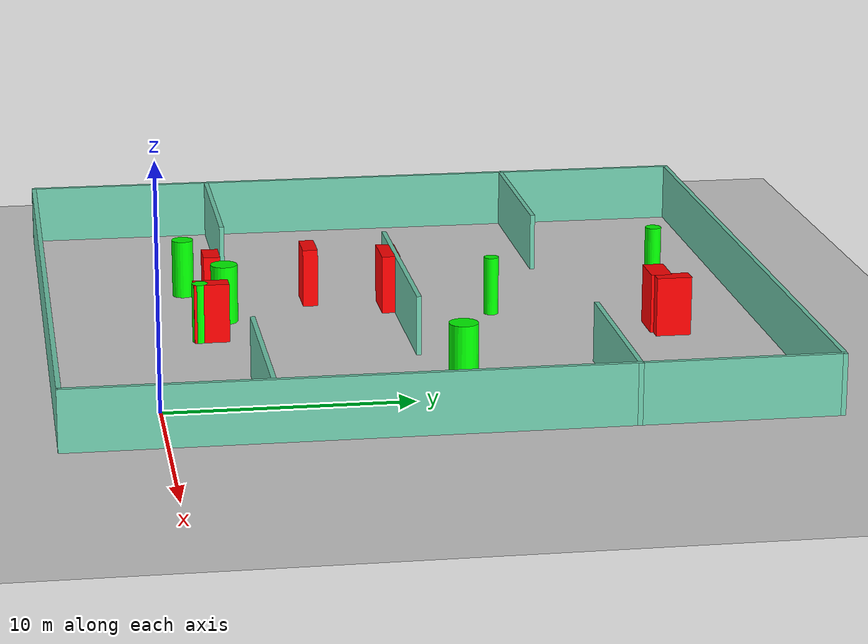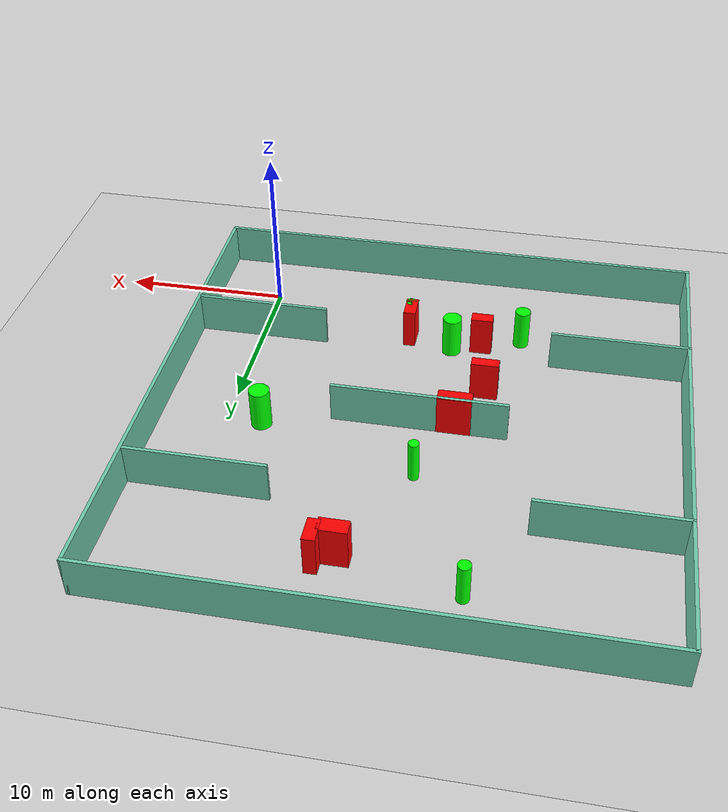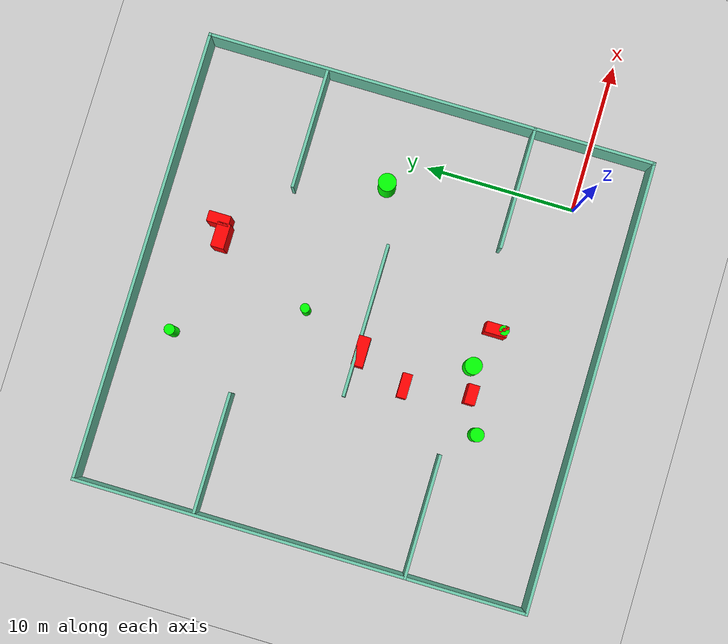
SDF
<sdf version="1.7">
 <world name="default">
  <light name="sun" type="directional">
   <pose>0 0 10 0 -0 0</pose>
   <diffuse>0.8 0.8 0.8 1</diffuse>
   <specular>0.2 0.2 0.2 1</specular>
   <attenuation>
    <range>1000</range>
    <constant>0.9</constant>
    <linear>0.01</linear>
    <quadratic>0.001</quadratic>
   </attenuation>
   <direction>-0.5 0.1 -0.9</direction>
   <spot><inner_angle>0</inner_angle><outer_angle>0</outer_angle><falloff>0</falloff></spot>
  </light>
  <model name="ground_plane">
   <static>1</static>
   <link name="link">
    <collision name="collision">
     <geometry><plane><normal>0 0 1</normal><size>100 100</size></plane></geometry>
     <surface>
      <contact><collide_bitmask>65535</collide_bitmask></contact>
      <friction><ode><mu>100</mu><mu2>50</mu2></ode></friction>
     </surface>
    </collision>
    <visual name="visual">
     <cast_shadows>0</cast_shadows>
     <geometry><plane><normal>0 0 1</normal><size>100 100</size></plane></geometry>
     <material>
      <script><uri>file://media/materials/scripts/gazebo.material</uri><name>Gazebo/Grey</name></script>
     </material>
    </visual>
   </link>
  </model>
  <gravity>0 0 -9.8</gravity>
  <magnetic_field>6e-06 2.3e-05 -4.2e-05</magnetic_field>
  <atmosphere type="adiabatic"/>
  <physics type="ode">
   <max_step_size>0.001</max_step_size>
   <real_time_factor>1</real_time_factor>
   <real_time_update_rate>1000</real_time_update_rate>
  </physics>
  <scene><ambient>0.4 0.4 0.4 1</ambient><background>0.7 0.7 0.7 1</background><shadows>1</shadows></scene>
  <spherical_coordinates>
   <surface_model>EARTH_WGS84</surface_model>
   <latitude_deg>0</latitude_deg>
   <longitude_deg>0</longitude_deg>
   <elevation>0</elevation>
   <heading_deg>0</heading_deg>
  </spherical_coordinates>
  <model name="my_base_walls">
   <link name="Wall_10">
    <collision name="Wall_10_Collision">
     <geometry><box><size>8.2 0.2 2.5</size></box></geometry>
     <pose>0 0 1.25 0 -0 0</pose>
    </collision>
    <visual name="Wall_10_Visual">
     <pose>0 0 1.25 0 -0 0</pose>
     <geometry><box><size>8.2 0.2 2.5</size></box></geometry>
     <material>
      <script><uri>file://media/materials/scripts/gazebo.material</uri><name>Gazebo/Grey</name></script>
      <ambient>0.435294 0.796078 0.67451 1</ambient>
     </material>
     <meta><layer>0</layer></meta>
    </visual>
    <pose>-11 -7 0 0 -0 0</pose>
   </link>
   <link name="Wall_12">
    <collision name="Wall_12_Collision">
     <geometry><box><size>8.2 0.2 2.5</size></box></geometry>
     <pose>0 0 1.25 0 -0 0</pose>
    </collision>
    <visual name="Wall_12_Visual">
     <pose>0 0 1.25 0 -0 0</pose>
     <geometry><box><size>8.2 0.2 2.5</size></box></geometry>
     <material>
      <script><uri>file://media/materials/scripts/gazebo.material</uri><name>Gazebo/Grey</name></script>
      <ambient>0.435294 0.796078 0.67451 1</ambient>
     </material>
     <meta><layer>0</layer></meta>
    </visual>
    <pose>-11 7 0 0 -0 0</pose>
   </link>
   <link name="Wall_14">
    <collision name="Wall_14_Collision">
     <geometry><box><size>8.2 0.2 2.5</size></box></geometry>
     <pose>0 0 1.25 0 -0 0</pose>
    </collision>
    <visual name="Wall_14_Visual">
     <pose>0 0 1.25 0 -0 0</pose>
     <geometry><box><size>8.2 0.2 2.5</size></box></geometry>
     <material>
      <script><uri>file://media/materials/scripts/gazebo.material</uri><name>Gazebo/Grey</name></script>
      <ambient>0.435294 0.796078 0.67451 1</ambient>
     </material>
     <meta><layer>0</layer></meta>
    </visual>
    <pose>11 7 0 0 -0 3.14159</pose>
   </link>
   <link name="Wall_16">
    <collision name="Wall_16_Collision">
     <geometry><box><size>10.2 0.2 2.5</size></box></geometry>
     <pose>0 0 1.25 0 -0 0</pose>
    </collision>
    <visual name="Wall_16_Visual">
     <pose>0 0 1.25 0 -0 0</pose>
     <geometry><box><size>10.2 0.2 2.5</size></box></geometry>
     <material>
      <script><uri>file://media/materials/scripts/gazebo.material</uri><name>Gazebo/Grey</name></script>
      <ambient>0.435294 0.796078 0.67451 1</ambient>
     </material>
     <meta><layer>0</layer></meta>
    </visual>
    <pose>0 0 0 0 -0 3.14159</pose>
   </link>
   <link name="Wall_2">
    <collision name="Wall_2_Collision">
     <geometry><box><size>30.2 0.2 2.5</size></box></geometry>
     <pose>0 0 1.25 0 -0 0</pose>
    </collision>
    <visual name="Wall_2_Visual">
     <pose>0 0 1.25 0 -0 0</pose>
     <geometry><box><size>30.2 0.2 2.5</size></box></geometry>
     <material>
      <script><uri>file://media/materials/scripts/gazebo.material</uri><name>Gazebo/Grey</name></script>
      <ambient>0.435294 0.796078 0.67451 1</ambient>
     </material>
     <meta><layer>0</layer></meta>
    </visual>
    <pose>0 -15 0 0 -0 3.14159</pose>
   </link>
   <link name="Wall_3">
    <collision name="Wall_3_Collision">
     <geometry><box><size>30.2 0.2 2.5</size></box></geometry>
     <pose>0 0 1.25 0 -0 0</pose>
    </collision>
    <visual name="Wall_3_Visual">
     <pose>0 0 1.25 0 -0 0</pose>
     <geometry><box><size>30.2 0.2 2.5</size></box></geometry>
     <material>
      <script><uri>file://media/materials/scripts/gazebo.material</uri><name>Gazebo/Grey</name></script>
      <ambient>0.435294 0.796078 0.67451 1</ambient>
     </material>
     <meta><layer>0</layer></meta>
    </visual>
    <pose>-15 0 0 0 -0 1.5708</pose>
   </link>
   <link name="Wall_4">
    <collision name="Wall_4_Collision">
     <geometry><box><size>30.2 0.2 2.5</size></box></geometry>
     <pose>0 0 1.25 0 -0 0</pose>
    </collision>
    <visual name="Wall_4_Visual">
     <pose>0 0 1.25 0 -0 0</pose>
     <geometry><box><size>30.2 0.2 2.5</size></box></geometry>
     <material>
      <script><uri>file://media/materials/scripts/gazebo.material</uri><name>Gazebo/Grey</name></script>
      <ambient>0.435294 0.796078 0.67451 1</ambient>
     </material>
     <meta><layer>0</layer></meta>
    </visual>
    <pose>0 15 0 0 -0 0</pose>
   </link>
   <link name="Wall_6">
    <collision name="Wall_6_Collision">
     <geometry><box><size>30.2 0.2 2.5</size></box></geometry>
     <pose>0 0 1.25 0 -0 0</pose>
    </collision>
    <visual name="Wall_6_Visual">
     <pose>0 0 1.25 0 -0 0</pose>
     <geometry><box><size>30.2 0.2 2.5</size></box></geometry>
     <material>
      <script><uri>file://media/materials/scripts/gazebo.material</uri><name>Gazebo/Grey</name></script>
      <ambient>0.435294 0.796078 0.67451 1</ambient>
     </material>
     <meta><layer>0</layer></meta>
    </visual>
    <pose>15 0 0 0 -0 1.5708</pose>
   </link>
   <link name="Wall_8">
    <collision name="Wall_8_Collision">
     <geometry><box><size>8.2 0.2 2.5</size></box></geometry>
     <pose>0 0 1.25 0 -0 0</pose>
    </collision>
    <visual name="Wall_8_Visual">
     <pose>0 0 1.25 0 -0 0</pose>
     <geometry><box><size>8.2 0.2 2.5</size></box></geometry>
     <material>
      <script><uri>file://media/materials/scripts/gazebo.material</uri><name>Gazebo/Grey</name></script>
      <ambient>0.435294 0.796078 0.67451 1</ambient>
     </material>
     <meta><layer>0</layer></meta>
    </visual>
    <pose>11 -7 0 0 -0 3.14159</pose>
   </link>
   <static>1</static>
   <pose>-11 11 0 0 -0 0</pose>
  </model>
  <model name="cylinder1">
   <static>1</static>
   <link name="link">
    <inertial>
     <mass>1</mass>
     <inertia><ixx>0.5</ixx><ixy>0</ixy><ixz>0</ixz><iyy>0.5</iyy><iyz>0</iyz><izz>1</izz></inertia>
    </inertial>
    <collision name="collision">
     <geometry><cylinder><radius>0.5989491937738323</radius><length>2.5</length></cylinder></geometry>
    </collision>
    <visual name="visual">
     <geometry><cylinder><radius>0.5989491937738323</radius><length>2.5</length></cylinder></geometry>
     <material>
      <ambient>0 1 0 1</ambient>
      <diffuse>0 1 0 1</diffuse>
      <specular>0.1 0.1 0.1 1</specular>
      <emissive>0 0 0 0</emissive>
     </material>
    </visual>
   </link>
   <pose>-2.0635536661782403 12.200839927648927 1.25 0 0 0</pose>
  </model>
  <model name="cylinder2">
   <static>1</static>
   <link name="link">
    <inertial>
     <mass>1</mass>
     <inertia><ixx>0.5</ixx><ixy>0</ixy><ixz>0</ixz><iyy>0.5</iyy><iyz>0</iyz><izz>1</izz></inertia>
    </inertial>
    <collision name="collision">
     <geometry><cylinder><radius>0.33364034862856157</radius><length>2.5</length></cylinder></geometry>
    </collision>
    <visual name="visual">
     <geometry><cylinder><radius>0.33364034862856157</radius><length>2.5</length></cylinder></geometry>
     <material>
      <ambient>0 1 0 1</ambient>
      <diffuse>0 1 0 1</diffuse>
      <specular>0.1 0.1 0.1 1</specular>
      <emissive>0 0 0 0</emissive>
     </material>
    </visual>
   </link>
   <pose>-9.132691556437852 2.306453134440183 1.25 0 0 0</pose>
  </model>
  <model name="cylinder3">
   <static>1</static>
   <link name="link">
    <inertial>
     <mass>1</mass>
     <inertia><ixx>0.5</ixx><ixy>0</ixy><ixz>0</ixz><iyy>0.5</iyy><iyz>0</iyz><izz>1</izz></inertia>
    </inertial>
    <collision name="collision">
     <geometry><cylinder><radius>0.46288112792322467</radius><length>2.5</length></cylinder></geometry>
    </collision>
    <visual name="visual">
     <geometry><cylinder><radius>0.46288112792322467</radius><length>2.5</length></cylinder></geometry>
     <material>
      <ambient>0 1 0 1</ambient>
      <diffuse>0 1 0 1</diffuse>
      <specular>0.1 0.1 0.1 1</specular>
      <emissive>0 0 0 0</emissive>
     </material>
    </visual>
   </link>
   <pose>-16.034280430511135 2.117156246723937 1.25 0 0 0</pose>
  </model>
  <model name="cylinder4">
   <static>1</static>
   <link name="link">
    <inertial>
     <mass>1</mass>
     <inertia><ixx>0.5</ixx><ixy>0</ixy><ixz>0</ixz><iyy>0.5</iyy><iyz>0</iyz><izz>1</izz></inertia>
    </inertial>
    <collision name="collision">
     <geometry><cylinder><radius>0.310930072841698</radius><length>2.5</length></cylinder></geometry>
    </collision>
    <visual name="visual">
     <geometry><cylinder><radius>0.310930072841698</radius><length>2.5</length></cylinder></geometry>
     <material>
      <ambient>0 1 0 1</ambient>
      <diffuse>0 1 0 1</diffuse>
      <specular>0.1 0.1 0.1 1</specular>
      <emissive>0 0 0 0</emissive>
     </material>
    </visual>
   </link>
   <pose>-11.37131300941944 14.961092148638745 1.25 0 0 0</pose>
  </model>
  <model name="cylinder5">
   <static>1</static>
   <link name="link">
    <inertial>
     <mass>1</mass>
     <inertia><ixx>0.5</ixx><ixy>0</ixy><ixz>0</ixz><iyy>0.5</iyy><iyz>0</iyz><izz>1</izz></inertia>
    </inertial>
    <collision name="collision">
     <geometry><cylinder><radius>0.3514179478811973</radius><length>2.5</length></cylinder></geometry>
    </collision>
    <visual name="visual">
     <geometry><cylinder><radius>0.3514179478811973</radius><length>2.5</length></cylinder></geometry>
     <material>
      <ambient>0 1 0 1</ambient>
      <diffuse>0 1 0 1</diffuse>
      <specular>0.1 0.1 0.1 1</specular>
      <emissive>0 0 0 0</emissive>
     </material>
    </visual>
   </link>
   <pose>-15.14416173578302 22.90313221247723 1.25 0 0 0</pose>
  </model>
  <model name="cylinder6">
   <static>1</static>
   <link name="link">
    <inertial>
     <mass>1</mass>
     <inertia><ixx>0.5</ixx><ixy>0</ixy><ixz>0</ixz><iyy>0.5</iyy><iyz>0</iyz><izz>1</izz></inertia>
    </inertial>
    <collision name="collision">
     <geometry><cylinder><radius>0.5701629492392692</radius><length>2.5</length></cylinder></geometry>
    </collision>
    <visual name="visual">
     <geometry><cylinder><radius>0.5701629492392692</radius><length>2.5</length></cylinder></geometry>
     <material>
      <ambient>0 1 0 1</ambient>
      <diffuse>0 1 0 1</diffuse>
      <specular>0.1 0.1 0.1 1</specular>
      <emissive>0 0 0 0</emissive>
     </material>
    </visual>
   </link>
   <pose>-11.867951451244469 3.560776472924279 1.25 0 0 0</pose>
  </model>
  <model name="box1">
   <static>1</static>
   <link name="link">
    <inertial>
     <mass>1</mass>
     <inertia><ixx>0.083</ixx><ixy>0</ixy><ixz>0</ixz><iyy>0.083</iyy><iyz>0</iyz><izz>0.083</izz></inertia>
    </inertial>
    <collision name="collision">
     <geometry><box><size>1.6216035149766144 0.6476209819543752 2.5</size></box></geometry>
    </collision>
    <visual name="visual">
     <geometry><box><size>1.6216035149766144 0.6476209819543752 2.5</size></box></geometry>
     <material>
      <ambient>1 0 0 1</ambient>
      <diffuse>1 0 0 1</diffuse>
      <specular>0.1 0.1 0.1 1</specular>
      <emissive>0 0 0 0</emissive>
     </material>
    </visual>
    <sensor name="my_contact" type="contact">
     <contact><collision>box_collision</collision><topic>__default_topic__</topic></contact>
    </sensor>
   </link>
   <pose>-14.332131022534714 7.432340093255327 1.25 0 0 0</pose>
  </model>
  <model name="box2">
   <static>1</static>
   <link name="link">
    <inertial>
     <mass>1</mass>
     <inertia><ixx>0.083</ixx><ixy>0</ixy><ixz>0</ixz><iyy>0.083</iyy><iyz>0</iyz><izz>0.083</izz></inertia>
    </inertial>
    <collision name="collision">
     <geometry><box><size>1.307101332060894 0.7129863909234483 2.5</size></box></geometry>
    </collision>
    <visual name="visual">
     <geometry><box><size>1.307101332060894 0.7129863909234483 2.5</size></box></geometry>
     <material>
      <ambient>1 0 0 1</ambient>
      <diffuse>1 0 0 1</diffuse>
      <specular>0.1 0.1 0.1 1</specular>
      <emissive>0 0 0 0</emissive>
     </material>
    </visual>
    <sensor name="my_contact" type="contact">
     <contact><collision>box_collision</collision><topic>__default_topic__</topic></contact>
    </sensor>
   </link>
   <pose>-13.65148037431722 3.145413127659994 1.25 0 0 0</pose>
  </model>
  <model name="box3">
   <static>1</static>
   <link name="link">
    <inertial>
     <mass>1</mass>
     <inertia><ixx>0.083</ixx><ixy>0</ixy><ixz>0</ixz><iyy>0.083</iyy><iyz>0</iyz><izz>0.083</izz></inertia>
    </inertial>
    <collision name="collision">
     <geometry><box><size>0.7085292716264686 1.474976915230663 2.5</size></box></geometry>
    </collision>
    <visual name="visual">
     <geometry><box><size>0.7085292716264686 1.474976915230663 2.5</size></box></geometry>
     <material>
      <ambient>1 0 0 1</ambient>
      <diffuse>1 0 0 1</diffuse>
      <specular>0.1 0.1 0.1 1</specular>
      <emissive>0 0 0 0</emissive>
     </material>
    </visual>
    <sensor name="my_contact" type="contact">
     <contact><collision>box_collision</collision><topic>__default_topic__</topic></contact>
    </sensor>
   </link>
   <pose>-7.399692738371542 21.954377304895647 1.25 0 0 0</pose>
  </model>
  <model name="box4">
   <static>1</static>
   <link name="link">
    <inertial>
     <mass>1</mass>
     <inertia><ixx>0.083</ixx><ixy>0</ixy><ixz>0</ixz><iyy>0.083</iyy><iyz>0</iyz><izz>0.083</izz></inertia>
    </inertial>
    <collision name="collision">
     <geometry><box><size>1.9799992928215537 0.7908866494983973 2.5</size></box></geometry>
    </collision>
    <visual name="visual">
     <geometry><box><size>1.9799992928215537 0.7908866494983973 2.5</size></box></geometry>
     <material>
      <ambient>1 0 0 1</ambient>
      <diffuse>1 0 0 1</diffuse>
      <specular>0.1 0.1 0.1 1</specular>
      <emissive>0 0 0 0</emissive>
     </material>
    </visual>
    <sensor name="my_contact" type="contact">
     <contact><collision>box_collision</collision><topic>__default_topic__</topic></contact>
    </sensor>
   </link>
   <pose>-13.010124966935654 10.733472595553197 1.25 0 0 0</pose>
  </model>
  <model name="box5">
   <static>1</static>
   <link name="link">
    <inertial>
     <mass>1</mass>
     <inertia><ixx>0.083</ixx><ixy>0</ixy><ixz>0</ixz><iyy>0.083</iyy><iyz>0</iyz><izz>0.083</izz></inertia>
    </inertial>
    <collision name="collision">
     <geometry><box><size>0.7193551689588495 1.4653871352820869 2.5</size></box></geometry>
    </collision>
    <visual name="visual">
     <geometry><box><size>0.7193551689588495 1.4653871352820869 2.5</size></box></geometry>
     <material>
      <ambient>1 0 0 1</ambient>
      <diffuse>1 0 0 1</diffuse>
      <specular>0.1 0.1 0.1 1</specular>
      <emissive>0 0 0 0</emissive>
     </material>
    </visual>
    <sensor name="my_contact" type="contact">
     <contact><collision>box_collision</collision><topic>__default_topic__</topic></contact>
    </sensor>
   </link>
   <pose>-9.1944662961578 2.775500504293035 1.25 0 0 0</pose>
  </model>
  <model name="box6">
   <static>1</static>
   <link name="link">
    <inertial>
     <mass>1</mass>
     <inertia><ixx>0.083</ixx><ixy>0</ixy><ixz>0</ixz><iyy>0.083</iyy><iyz>0</iyz><izz>0.083</izz></inertia>
    </inertial>
    <collision name="collision">
     <geometry><box><size>1.6594282260189424 0.8778893025195738 2.5</size></box></geometry>
    </collision>
    <visual name="visual">
     <geometry><box><size>1.6594282260189424 0.8778893025195738 2.5</size></box></geometry>
     <material>
      <ambient>1 0 0 1</ambient>
      <diffuse>1 0 0 1</diffuse>
      <specular>0.1 0.1 0.1 1</specular>
      <emissive>0 0 0 0</emissive>
     </material>
    </visual>
    <sensor name="my_contact" type="contact">
     <contact><collision>box_collision</collision><topic>__default_topic__</topic></contact>
    </sensor>
   </link>
   <pose>-8.401519329471466 21.524822714933673 1.25 0 0 0</pose>
  </model>
 </world>
</sdf>
